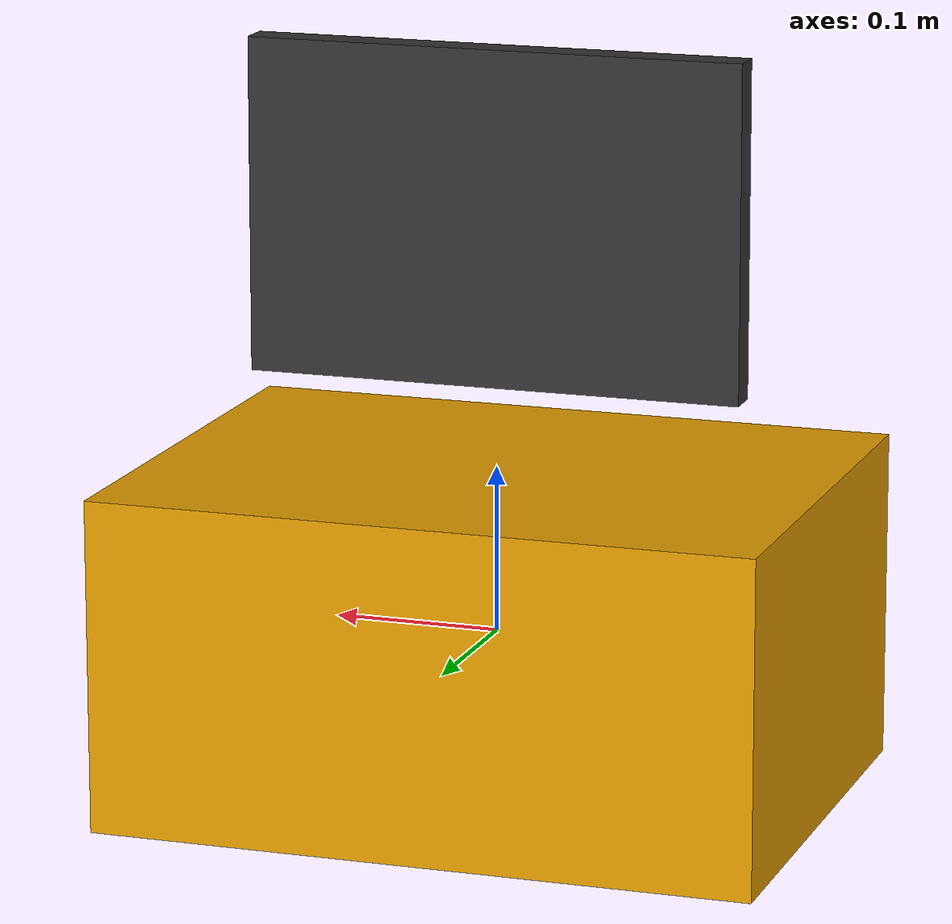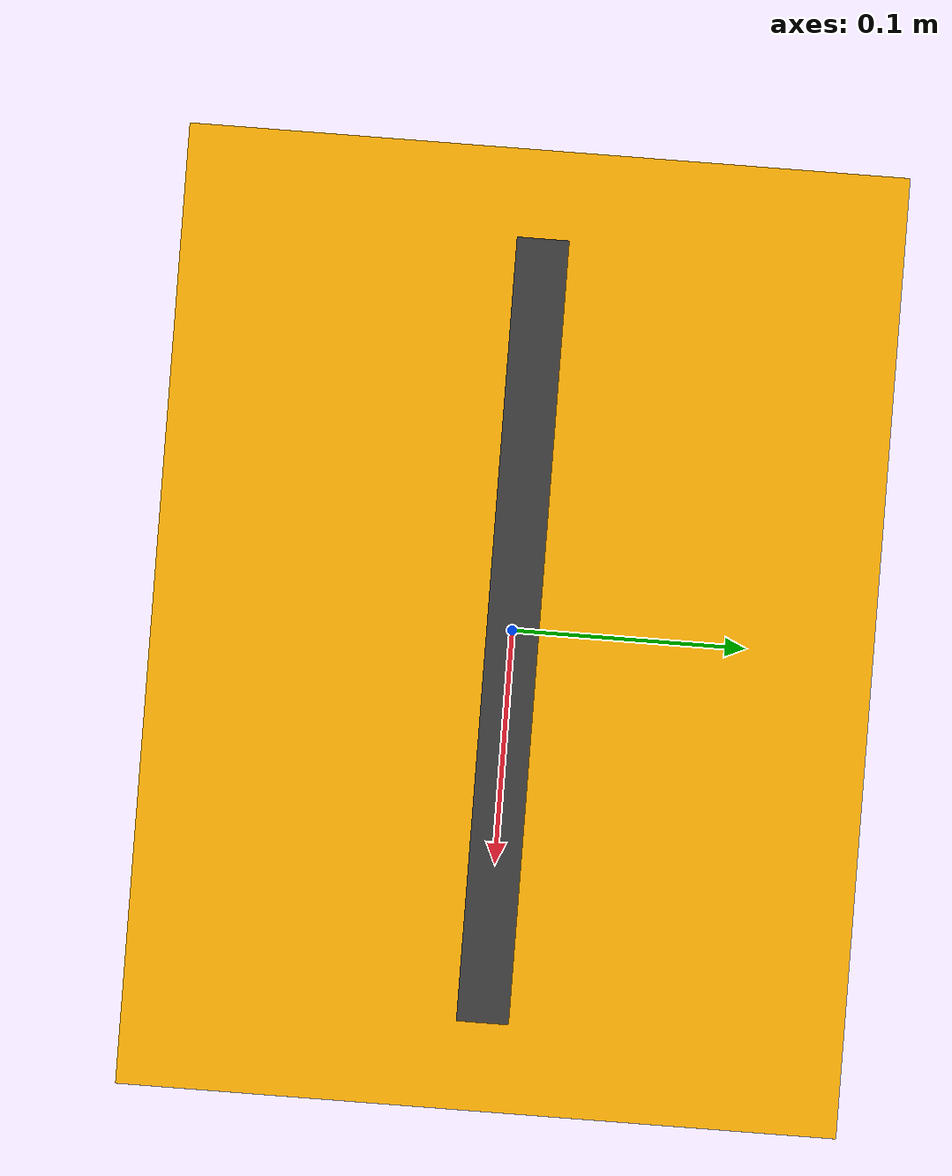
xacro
<?xml version="1.0"?>
<robot xmlns:xacro="http://www.ros.org/wiki/xacro" name="alc_robot">

  <link name="base_link">
    <inertial>
      <mass value="5.0"/>
      <origin xyz="0 0 0" rpy="0 0 0"/>
      <inertia ixx="0.2" iyy="0.2" izz="0.2" ixy="0" ixz="0" iyz="0"/>
    </inertial>
    <visual>
      <geometry><box size="0.4 0.3 0.2"/></geometry>
    </visual>
    <collision>
      <geometry><box size="0.4 0.3 0.2"/></geometry>
    </collision>
  </link>

  <link name="screen_link">
    <inertial>
      <mass value="0.1"/>
      <origin xyz="0.0 0.0 0.25" rpy="0 0 0"/>
      <inertia ixx="0.001" iyy="0.001" izz="0.001" ixy="0" ixz="0" iyz="0"/>
    </inertial>
    <visual>
      <origin xyz="0.0 0.0 0.25" rpy="0 0 0"/>
      <geometry><box size="0.3 0.02 0.2"/></geometry>
      <material name="screen_material">
        <color rgba="0.2 0.2 0.2 1.0"/>
      </material>
    </visual>
    <collision>
      <origin xyz="0.0 0.0 0.25" rpy="0 0 0"/>
      <geometry><box size="0.3 0.02 0.2"/></geometry>
    </collision>
  </link>

  <joint name="screen_joint" type="fixed">
    <parent link="base_link"/>
    <child link="screen_link"/>
    <origin xyz="0 0 0" rpy="0 0 0"/>
  </joint>

</robot>
